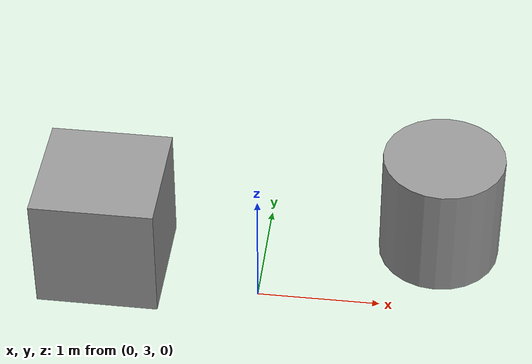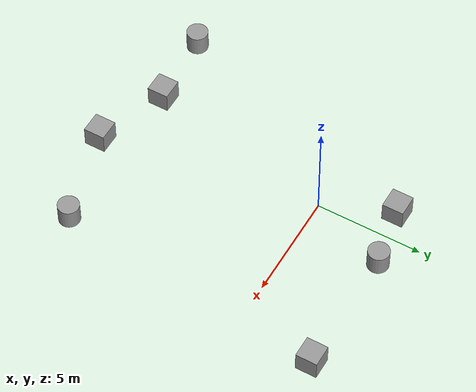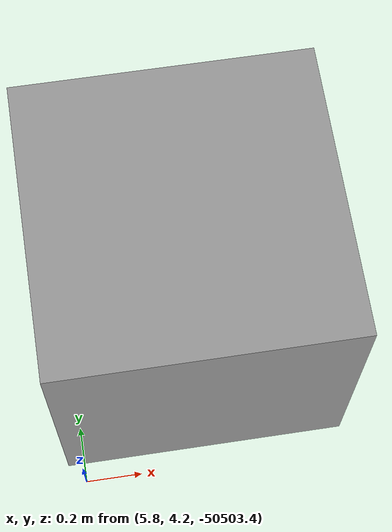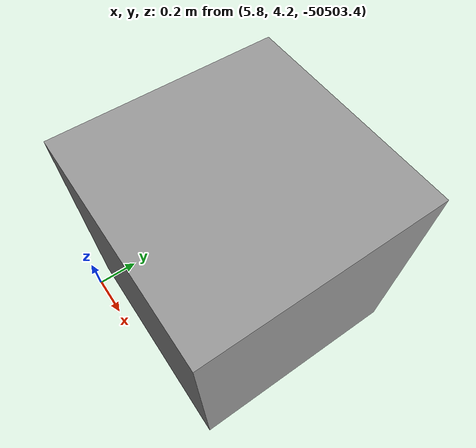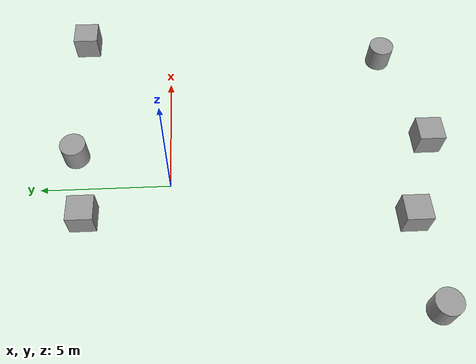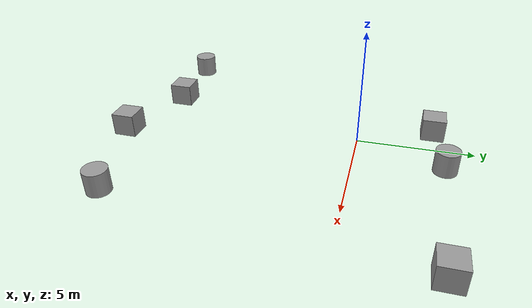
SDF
<sdf version="1.6">
 <world name="default">
  <plugin name="ros_link_attaasflknnsalfsfnjalcher_plugin" filename="libgazebo_ros_link_attacher.so"/>
  <light name="sun" type="directional">
   <pose>0 0 10 0 -0 0</pose>
   <diffuse>0.8 0.8 0.8 1</diffuse>
   <specular>0.2 0.2 0.2 1</specular>
   <attenuation>
    <range>1000</range>
    <constant>0.9</constant>
    <linear>0.01</linear>
    <quadratic>0.001</quadratic>
   </attenuation>
   <direction>-0.5 0.1 -0.9</direction>
  </light>
  <gravity>0 0 -9.8</gravity>
  <magnetic_field>6e-06 2.3e-05 -4.2e-05</magnetic_field>
  <atmosphere type="adiabatic"/>
  <physics name="default_physics" default="0" type="ode">
   <max_step_size>0.001</max_step_size>
   <real_time_factor>1</real_time_factor>
   <real_time_update_rate>1000</real_time_update_rate>
  </physics>
  <scene><ambient>0.4 0.4 0.4 1</ambient><background>0.7 0.7 0.7 1</background><shadows>1</shadows></scene>
  <spherical_coordinates>
   <surface_model>EARTH_WGS84</surface_model>
   <latitude_deg>0</latitude_deg>
   <longitude_deg>0</longitude_deg>
   <elevation>0</elevation>
   <heading_deg>0</heading_deg>
  </spherical_coordinates>
  <model name="unit_box">
   <pose>6.24191 4.76772 -50502.9 0 -0 0</pose>
   <link name="link">
    <inertial>
     <mass>1</mass>
     <inertia>
      <ixx>0.166667</ixx>
      <ixy>0</ixy>
      <ixz>0</ixz>
      <iyy>0.166667</iyy>
      <iyz>0</iyz>
      <izz>0.166667</izz>
     </inertia>
    </inertial>
    <collision name="collision"><geometry><box><size>1 1 1</size></box></geometry></collision>
    <visual name="visual">
     <geometry><box><size>1 1 1</size></box></geometry>
     <material>
      <script><name>Gazebo/Grey</name><uri>file://media/materials/scripts/gazebo.material</uri></script>
     </material>
    </visual>
   </link>
  </model>
  <model name="unit_box_0">
   <pose>7.31573 3.6816 0.5 0 -0 4e-06</pose>
   <link name="link">
    <inertial>
     <mass>1</mass>
     <inertia>
      <ixx>0.166667</ixx>
      <ixy>0</ixy>
      <ixz>0</ixz>
      <iyy>0.166667</iyy>
      <iyz>0</iyz>
      <izz>0.166667</izz>
     </inertia>
    </inertial>
    <collision name="collision"><geometry><box><size>1 1 1</size></box></geometry></collision>
    <visual name="visual">
     <geometry><box><size>1 1 1</size></box></geometry>
     <material>
      <script><name>Gazebo/Grey</name><uri>file://media/materials/scripts/gazebo.material</uri></script>
     </material>
    </visual>
   </link>
  </model>
  <model name="unit_cylinder">
   <pose>1.4388 3.7281 0.499974 -6.4e-05 -4e-06 -0</pose>
   <link name="link">
    <inertial>
     <mass>1</mass>
     <inertia><ixx>0.145833</ixx><ixy>0</ixy><ixz>0</ixz><iyy>0.145833</iyy><iyz>0</iyz><izz>0.125</izz></inertia>
    </inertial>
    <collision name="collision">
     <geometry><cylinder><radius>0.5</radius><length>1</length></cylinder></geometry>
    </collision>
    <visual name="visual">
     <geometry><cylinder><radius>0.5</radius><length>1</length></cylinder></geometry>
     <material>
      <script><name>Gazebo/Grey</name><uri>file://media/materials/scripts/gazebo.material</uri></script>
     </material>
    </visual>
   </link>
  </model>
  <model name="unit_box_1">
   <pose>-1.29422 3.2214 0.5 -0 -0 -0</pose>
   <link name="link">
    <inertial>
     <mass>1</mass>
     <inertia>
      <ixx>0.166667</ixx>
      <ixy>0</ixy>
      <ixz>0</ixz>
      <iyy>0.166667</iyy>
      <iyz>0</iyz>
      <izz>0.166667</izz>
     </inertia>
    </inertial>
    <collision name="collision"><geometry><box><size>1 1 1</size></box></geometry></collision>
    <visual name="visual">
     <geometry><box><size>1 1 1</size></box></geometry>
     <material>
      <script><name>Gazebo/Grey</name><uri>file://media/materials/scripts/gazebo.material</uri></script>
     </material>
    </visual>
   </link>
  </model>
  <model name="unit_cylinder_0">
   <pose>-5.2805 -9.26351 0.499997 -5e-06 -5e-06 -2.5e-05</pose>
   <link name="link">
    <inertial>
     <mass>1</mass>
     <inertia><ixx>0.145833</ixx><ixy>0</ixy><ixz>0</ixz><iyy>0.145833</iyy><iyz>0</iyz><izz>0.125</izz></inertia>
    </inertial>
    <collision name="collision">
     <geometry><cylinder><radius>0.5</radius><length>1</length></cylinder></geometry>
    </collision>
    <visual name="visual">
     <geometry><cylinder><radius>0.5</radius><length>1</length></cylinder></geometry>
     <material>
      <script><name>Gazebo/Grey</name><uri>file://media/materials/scripts/gazebo.material</uri></script>
     </material>
    </visual>
   </link>
  </model>
  <model name="unit_box_2">
   <pose>-1.78166 -9.00545 0.499995 4e-06 -5e-06 0</pose>
   <link name="link">
    <inertial>
     <mass>1</mass>
     <inertia>
      <ixx>0.166667</ixx>
      <ixy>0</ixy>
      <ixz>0</ixz>
      <iyy>0.166667</iyy>
      <iyz>0</iyz>
      <izz>0.166667</izz>
     </inertia>
    </inertial>
    <collision name="collision"><geometry><box><size>1 1 1</size></box></geometry></collision>
    <visual name="visual">
     <geometry><box><size>1 1 1</size></box></geometry>
     <material>
      <script><name>Gazebo/Grey</name><uri>file://media/materials/scripts/gazebo.material</uri></script>
     </material>
    </visual>
   </link>
  </model>
  <model name="unit_cylinder_1">
   <pose>6.0019 -9.12862 0.5 0 -0 1e-06</pose>
   <link name="link">
    <inertial>
     <mass>1</mass>
     <inertia><ixx>0.145833</ixx><ixy>0</ixy><ixz>0</ixz><iyy>0.145833</iyy><iyz>0</iyz><izz>0.125</izz></inertia>
    </inertial>
    <collision name="collision">
     <geometry><cylinder><radius>0.5</radius><length>1</length></cylinder></geometry>
    </collision>
    <visual name="visual">
     <geometry><cylinder><radius>0.5</radius><length>1</length></cylinder></geometry>
     <material>
      <script><name>Gazebo/Grey</name><uri>file://media/materials/scripts/gazebo.material</uri></script>
     </material>
    </visual>
   </link>
  </model>
  <model name="unit_box_3">
   <pose>1.63402 -10.2491 0.5 0 -0 2e-05</pose>
   <link name="link">
    <inertial>
     <mass>1</mass>
     <inertia>
      <ixx>0.166667</ixx>
      <ixy>0</ixy>
      <ixz>0</ixz>
      <iyy>0.166667</iyy>
      <iyz>0</iyz>
      <izz>0.166667</izz>
     </inertia>
    </inertial>
    <collision name="collision"><geometry><box><size>1 1 1</size></box></geometry></collision>
    <visual name="visual">
     <geometry><box><size>1 1 1</size></box></geometry>
     <material>
      <script><name>Gazebo/Grey</name><uri>file://media/materials/scripts/gazebo.material</uri></script>
     </material>
    </visual>
   </link>
  </model>
 </world>
</sdf>
